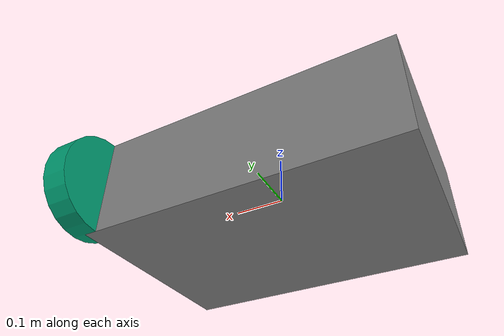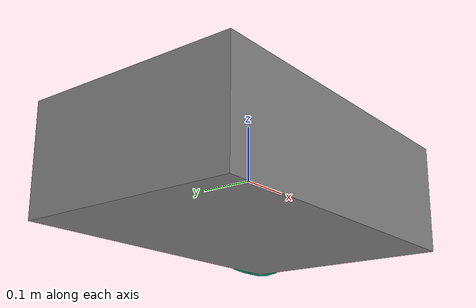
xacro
<?xml version="1.0"?>
<robot name="six_wheel_rover" xmlns:xacro="http://www.ros.org/wiki/xacro">

  <!-- Parameters: wheel radius, base dimensions, etc. -->
  <xacro:property name="wheel_radius" value="0.1"/>
  <xacro:property name="wheel_width"  value="0.05"/>

  <!-- Base link -->
  <link name="base_link">
    <inertial>
      <mass value="20.0"/>
      <origin xyz="0 0 0" rpy="0 0 0"/>
      <inertia ixx="1" ixy="0" ixz="0" iyy="1" iyz="0" izz="1"/>
    </inertial>
    <visual>
      <origin xyz="0 0 0" rpy="0 0 0"/>
      <geometry><box size="0.6 0.4 0.2"/></geometry>
      <material name="grey"><color rgba="0.5 0.5 0.5 1.0"/></material>
    </visual>
    <collision>
      <origin xyz="0 0 0" rpy="0 0 0"/>
      <geometry><box size="0.6 0.4 0.2"/></geometry>
    </collision>
  </link>

  <!-- Example wheel + steering joint: front left -->
  <joint name="front_left_steer_joint" type="continuous">
    <origin xyz="0.3 0.2 0" rpy="0 0 0"/>
    <parent link="base_link"/>
    <child  link="front_left_steer_link"/>
    <axis xyz="0 0 1"/>
  </joint>
  <link name="front_left_steer_link"/>

  <joint name="front_left_wheel_joint" type="continuous">
    <origin xyz="0 0 0" rpy="0 1.5708 0"/>
    <parent link="front_left_steer_link"/>
    <child  link="front_left_wheel_link"/>
    <axis xyz="0 0 1"/>
  </joint>
  <link name="front_left_wheel_link">
    <visual>
      <geometry><cylinder radius="${wheel_radius}" length="${wheel_width}"/></geometry>
    </visual>
  </link>

  <!-- Repeat for other wheels and steering joints (front_right, mid_left/right, rear_left/right) -->

  <!-- IMU, GPS, Kinect, arm links omitted for brevity but same pattern -->

</robot>
